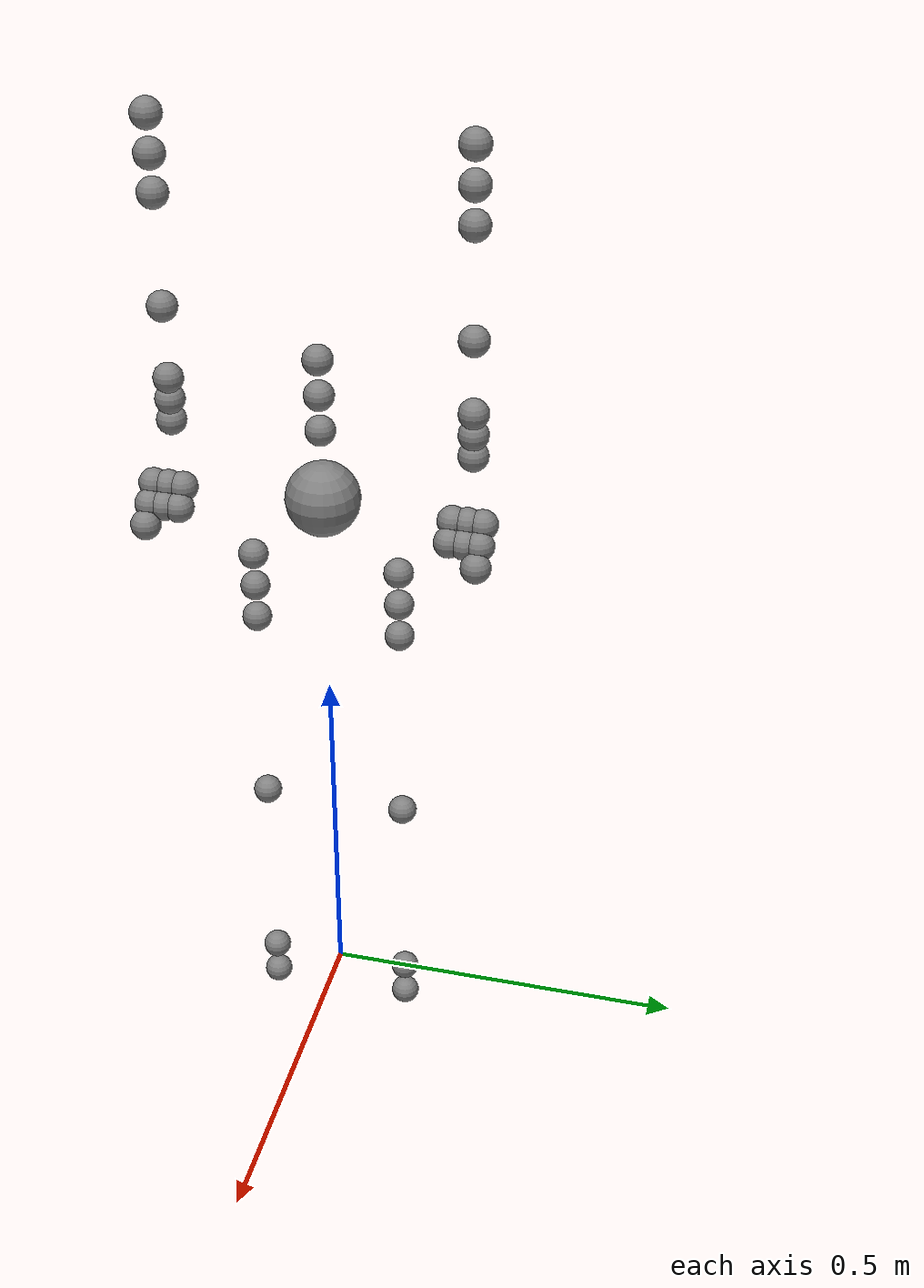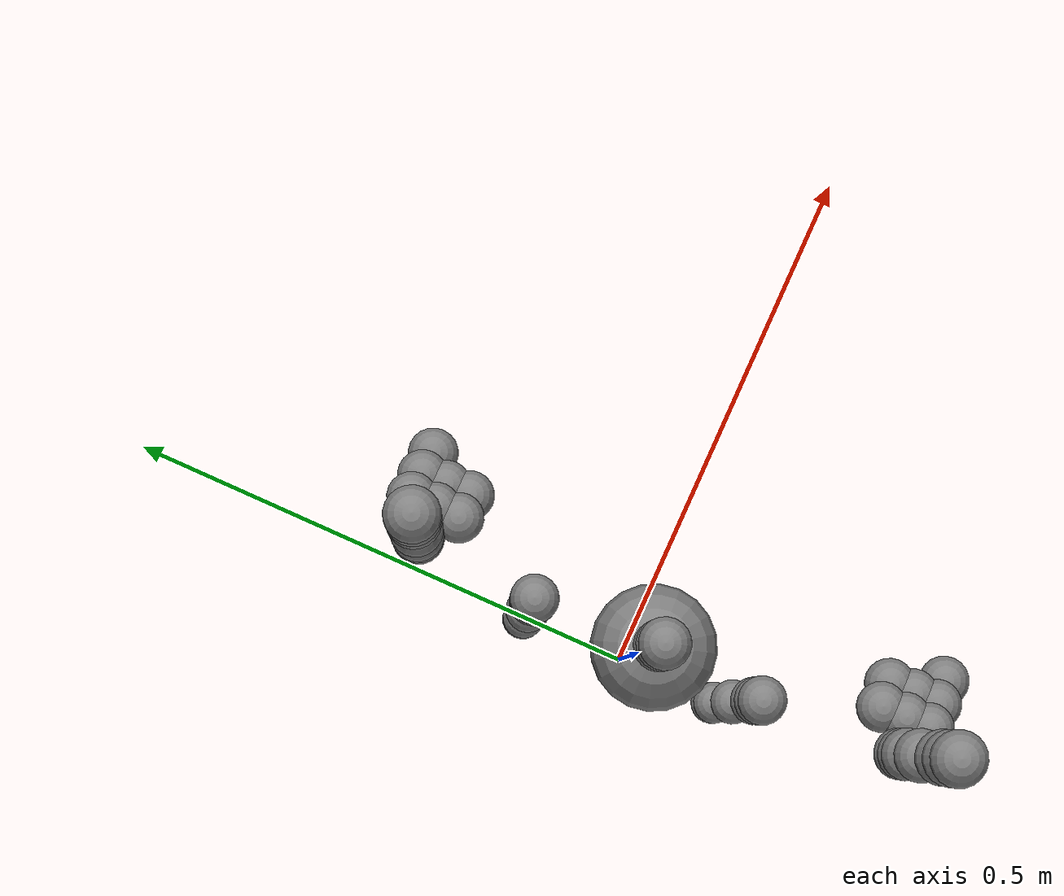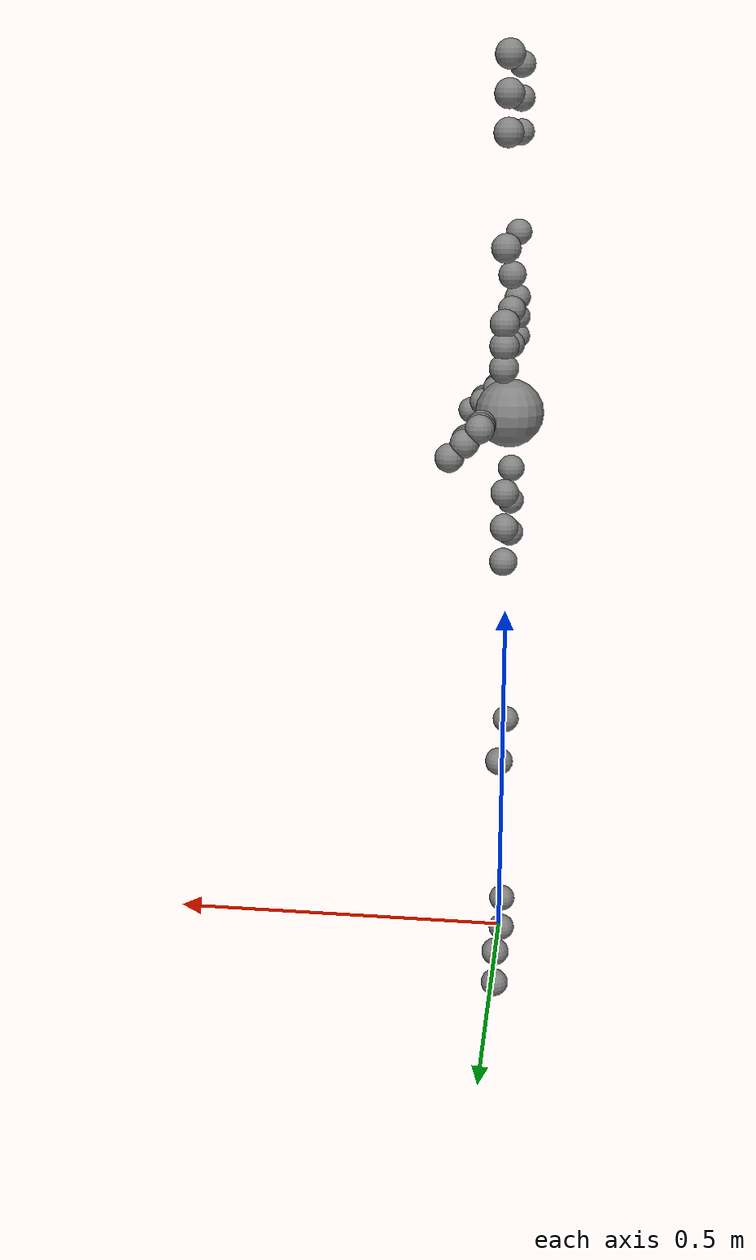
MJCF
<mujoco model="g1_29dof_with_hand_min">
  <option gravity="0 0 0"/>
  <worldbody>
    <body name="pelvis" pos="0 0 0.8">
      <freejoint/>
      <geom type="sphere" size="0.05" mass="1.0"/>
      <body name="left_hip_pitch_link" pos="0 0.1 -0.1">
        <joint name="left_hip_pitch_joint" type="hinge" axis="0 1 0" damping="0.1"/>
        <geom type="sphere" size="0.02" mass="0.1"/>
        <body name="left_hip_roll_link" pos="0 0 -0.05">
          <joint name="left_hip_roll_joint" type="hinge" axis="1 0 0" damping="0.1"/>
          <geom type="sphere" size="0.02" mass="0.1"/>
          <body name="left_hip_yaw_link" pos="0 0 -0.05">
            <joint name="left_hip_yaw_joint" type="hinge" axis="0 0 1" damping="0.1"/>
            <geom type="sphere" size="0.02" mass="0.1"/>
            <body name="left_knee_link" pos="0 0 -0.3">
              <joint name="left_knee_joint" type="hinge" axis="0 1 0" damping="0.1"/>
              <geom type="sphere" size="0.02" mass="0.1"/>
              <body name="left_ankle_pitch_link" pos="0 0 -0.3">
                <joint name="left_ankle_pitch_joint" type="hinge" axis="0 1 0" damping="0.1"/>
                <geom type="sphere" size="0.02" mass="0.1"/>
                <body name="left_ankle_roll_link" pos="0 0 -0.05">
                  <joint name="left_ankle_roll_joint" type="hinge" axis="1 0 0" damping="0.1"/>
                  <geom type="sphere" size="0.02" mass="0.1"/>
                </body>
              </body>
            </body>
          </body>
        </body>
      </body>
      <body name="right_hip_pitch_link" pos="0 -0.1 -0.1">
        <joint name="right_hip_pitch_joint" type="hinge" axis="0 1 0" damping="0.1"/>
        <geom type="sphere" size="0.02" mass="0.1"/>
        <body name="right_hip_roll_link" pos="0 0 -0.05">
          <joint name="right_hip_roll_joint" type="hinge" axis="1 0 0" damping="0.1"/>
          <geom type="sphere" size="0.02" mass="0.1"/>
          <body name="right_hip_yaw_link" pos="0 0 -0.05">
            <joint name="right_hip_yaw_joint" type="hinge" axis="0 0 1" damping="0.1"/>
            <geom type="sphere" size="0.02" mass="0.1"/>
            <body name="right_knee_link" pos="0 0 -0.3">
              <joint name="right_knee_joint" type="hinge" axis="0 1 0" damping="0.1"/>
              <geom type="sphere" size="0.02" mass="0.1"/>
              <body name="right_ankle_pitch_link" pos="0 0 -0.3">
                <joint name="right_ankle_pitch_joint" type="hinge" axis="0 1 0" damping="0.1"/>
                <geom type="sphere" size="0.02" mass="0.1"/>
                <body name="right_ankle_roll_link" pos="0 0 -0.05">
                  <joint name="right_ankle_roll_joint" type="hinge" axis="1 0 0" damping="0.1"/>
                  <geom type="sphere" size="0.02" mass="0.1"/>
                </body>
              </body>
            </body>
          </body>
        </body>
      </body>
      <body name="waist_yaw_link" pos="0 0 0.1">
        <joint name="waist_yaw_joint" type="hinge" axis="0 0 1" damping="0.1"/>
        <geom type="sphere" size="0.02" mass="0.1"/>
        <body name="waist_roll_link" pos="0 0 0.05">
          <joint name="waist_roll_joint" type="hinge" axis="1 0 0" damping="0.1"/>
          <geom type="sphere" size="0.02" mass="0.1"/>
          <body name="torso_link" pos="0 0 0.05">
            <joint name="waist_pitch_joint" type="hinge" axis="0 1 0" damping="0.1"/>
            <geom type="sphere" size="0.02" mass="0.1"/>
            <body name="left_shoulder_pitch_link" pos="0 0.2 0.3">
              <joint name="left_shoulder_pitch_joint" type="hinge" axis="0 1 0" damping="0.1"/>
              <geom type="sphere" size="0.02" mass="0.1"/>
              <body name="left_shoulder_roll_link" pos="0 0 -0.05">
                <joint name="left_shoulder_roll_joint" type="hinge" axis="1 0 0" damping="0.1"/>
                <geom type="sphere" size="0.02" mass="0.1"/>
                <body name="left_shoulder_yaw_link" pos="0 0 -0.05">
                  <joint name="left_shoulder_yaw_joint" type="hinge" axis="0 0 1" damping="0.1"/>
                  <geom type="sphere" size="0.02" mass="0.1"/>
                  <body name="left_elbow_link" pos="0 0 -0.15">
                    <joint name="left_elbow_joint" type="hinge" axis="0 1 0" damping="0.1"/>
                    <geom type="sphere" size="0.02" mass="0.1"/>
                    <body name="left_wrist_roll_link" pos="0 0 -0.1">
                      <joint name="left_wrist_roll_joint" type="hinge" axis="1 0 0" damping="0.1"/>
                      <geom type="sphere" size="0.02" mass="0.1"/>
                      <body name="left_wrist_pitch_link" pos="0 0 -0.03">
                        <joint name="left_wrist_pitch_joint" type="hinge" axis="0 1 0" damping="0.1"/>
                        <geom type="sphere" size="0.02" mass="0.1"/>
                        <body name="left_wrist_yaw_link" pos="0 0 -0.03">
                          <joint name="left_wrist_yaw_joint" type="hinge" axis="0 0 1" damping="0.1"/>
                          <geom type="sphere" size="0.02" mass="0.1"/>
                          <body name="left_hand_palm_link" pos="0 0 -0.06">
                            <body name="left_hand_thumb_0_link" pos="0.03 0.02 -0.02">
                              <joint name="left_hand_thumb_0_joint" type="hinge" axis="0 1 0" damping="0.1"/>
                              <geom type="sphere" size="0.02" mass="0.1"/>
                              <body name="left_hand_thumb_1_link" pos="0.02 0 -0.02">
                                <joint name="left_hand_thumb_1_joint" type="hinge" axis="0 1 0" damping="0.1"/>
                                <geom type="sphere" size="0.02" mass="0.1"/>
                                <body name="left_hand_thumb_2_link" pos="0.02 0 -0.02">
                                  <joint name="left_hand_thumb_2_joint" type="hinge" axis="0 1 0" damping="0.1"/>
                                  <geom type="sphere" size="0.02" mass="0.1"/>
                                </body>
                              </body>
                            </body>
                            <body name="left_hand_middle_0_link" pos="0.03 0.0 -0.02">
                              <joint name="left_hand_middle_0_joint" type="hinge" axis="0 1 0" damping="0.1"/>
                              <geom type="sphere" size="0.02" mass="0.1"/>
                              <body name="left_hand_middle_1_link" pos="0.02 0 -0.02">
                                <joint name="left_hand_middle_1_joint" type="hinge" axis="0 1 0" damping="0.1"/>
                                <geom type="sphere" size="0.02" mass="0.1"/>
                              </body>
                            </body>
                            <body name="left_hand_index_0_link" pos="0.03 -0.02 -0.02">
                              <joint name="left_hand_index_0_joint" type="hinge" axis="0 1 0" damping="0.1"/>
                              <geom type="sphere" size="0.02" mass="0.1"/>
                              <body name="left_hand_index_1_link" pos="0.02 0 -0.02">
                                <joint name="left_hand_index_1_joint" type="hinge" axis="0 1 0" damping="0.1"/>
                                <geom type="sphere" size="0.02" mass="0.1"/>
                              </body>
                            </body>
                          </body>
                        </body>
                      </body>
                    </body>
                  </body>
                </body>
              </body>
            </body>
            <body name="right_shoulder_pitch_link" pos="0 -0.2 0.3">
              <joint name="right_shoulder_pitch_joint" type="hinge" axis="0 1 0" damping="0.1"/>
              <geom type="sphere" size="0.02" mass="0.1"/>
              <body name="right_shoulder_roll_link" pos="0 0 -0.05">
                <joint name="right_shoulder_roll_joint" type="hinge" axis="1 0 0" damping="0.1"/>
                <geom type="sphere" size="0.02" mass="0.1"/>
                <body name="right_shoulder_yaw_link" pos="0 0 -0.05">
                  <joint name="right_shoulder_yaw_joint" type="hinge" axis="0 0 1" damping="0.1"/>
                  <geom type="sphere" size="0.02" mass="0.1"/>
                  <body name="right_elbow_link" pos="0 0 -0.15">
                    <joint name="right_elbow_joint" type="hinge" axis="0 1 0" damping="0.1"/>
                    <geom type="sphere" size="0.02" mass="0.1"/>
                    <body name="right_wrist_roll_link" pos="0 0 -0.1">
                      <joint name="right_wrist_roll_joint" type="hinge" axis="1 0 0" damping="0.1"/>
                      <geom type="sphere" size="0.02" mass="0.1"/>
                      <body name="right_wrist_pitch_link" pos="0 0 -0.03">
                        <joint name="right_wrist_pitch_joint" type="hinge" axis="0 1 0" damping="0.1"/>
                        <geom type="sphere" size="0.02" mass="0.1"/>
                        <body name="right_wrist_yaw_link" pos="0 0 -0.03">
                          <joint name="right_wrist_yaw_joint" type="hinge" axis="0 0 1" damping="0.1"/>
                          <geom type="sphere" size="0.02" mass="0.1"/>
                          <body name="right_hand_palm_link" pos="0 0 -0.06">
                            <body name="right_hand_thumb_0_link" pos="0.03 -0.02 -0.02">
                              <joint name="right_hand_thumb_0_joint" type="hinge" axis="0 1 0" damping="0.1"/>
                              <geom type="sphere" size="0.02" mass="0.1"/>
                              <body name="right_hand_thumb_1_link" pos="0.02 0 -0.02">
                                <joint name="right_hand_thumb_1_joint" type="hinge" axis="0 1 0" damping="0.1"/>
                                <geom type="sphere" size="0.02" mass="0.1"/>
                                <body name="right_hand_thumb_2_link" pos="0.02 0 -0.02">
                                  <joint name="right_hand_thumb_2_joint" type="hinge" axis="0 1 0" damping="0.1"/>
                                  <geom type="sphere" size="0.02" mass="0.1"/>
                                </body>
                              </body>
                            </body>
                            <body name="right_hand_middle_0_link" pos="0.03 0.0 -0.02">
                              <joint name="right_hand_middle_0_joint" type="hinge" axis="0 1 0" damping="0.1"/>
                              <geom type="sphere" size="0.02" mass="0.1"/>
                              <body name="right_hand_middle_1_link" pos="0.02 0 -0.02">
                                <joint name="right_hand_middle_1_joint" type="hinge" axis="0 1 0" damping="0.1"/>
                                <geom type="sphere" size="0.02" mass="0.1"/>
                              </body>
                            </body>
                            <body name="right_hand_index_0_link" pos="0.03 0.02 -0.02">
                              <joint name="right_hand_index_0_joint" type="hinge" axis="0 1 0" damping="0.1"/>
                              <geom type="sphere" size="0.02" mass="0.1"/>
                              <body name="right_hand_index_1_link" pos="0.02 0 -0.02">
                                <joint name="right_hand_index_1_joint" type="hinge" axis="0 1 0" damping="0.1"/>
                                <geom type="sphere" size="0.02" mass="0.1"/>
                              </body>
                            </body>
                          </body>
                        </body>
                      </body>
                    </body>
                  </body>
                </body>
              </body>
            </body>
          </body>
        </body>
      </body>
    </body>
  </worldbody>
</mujoco>
